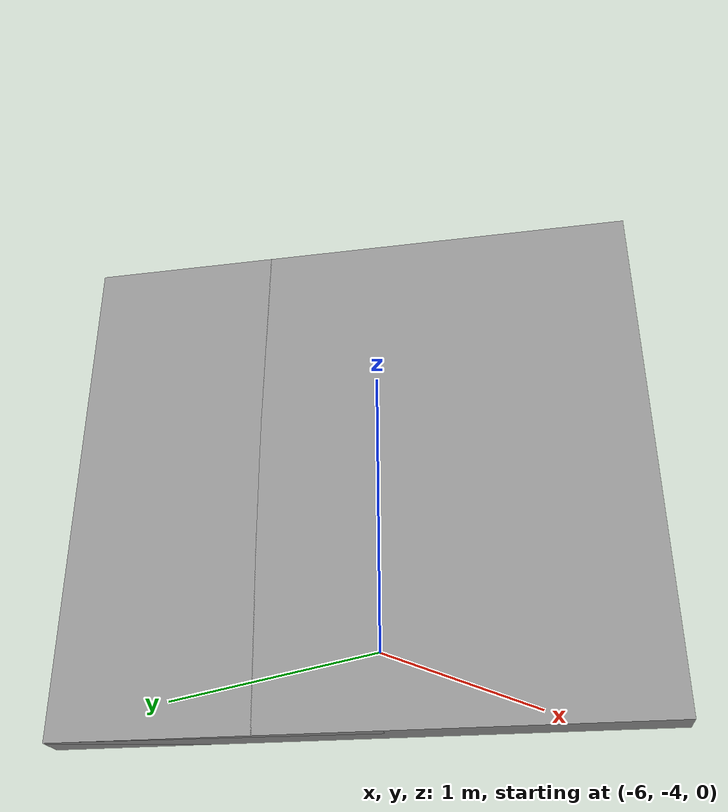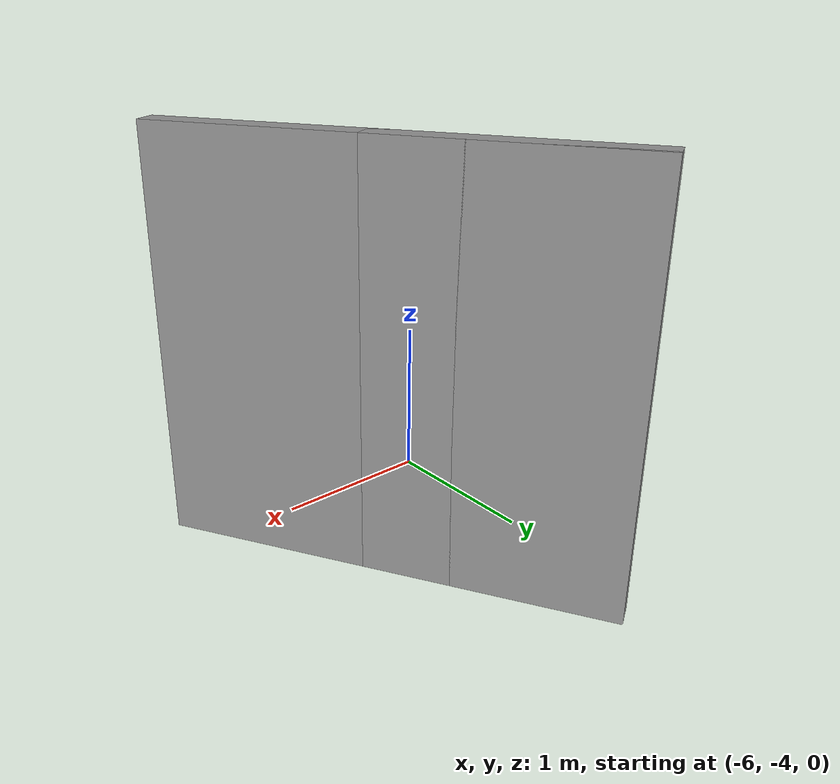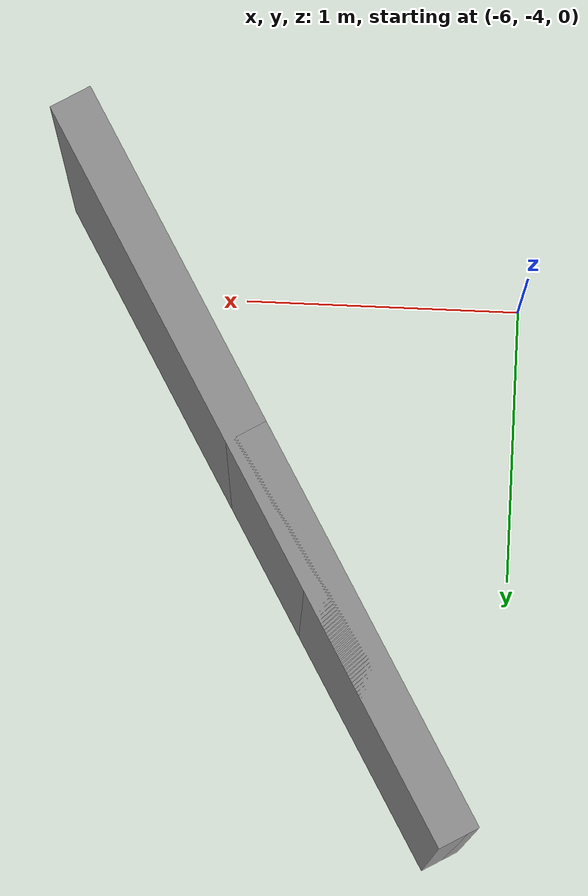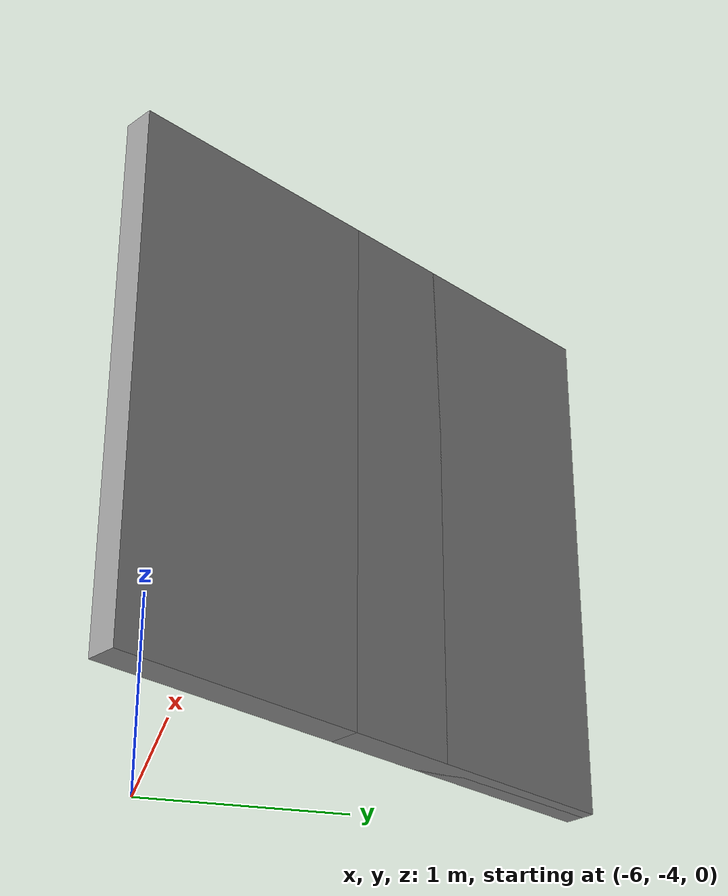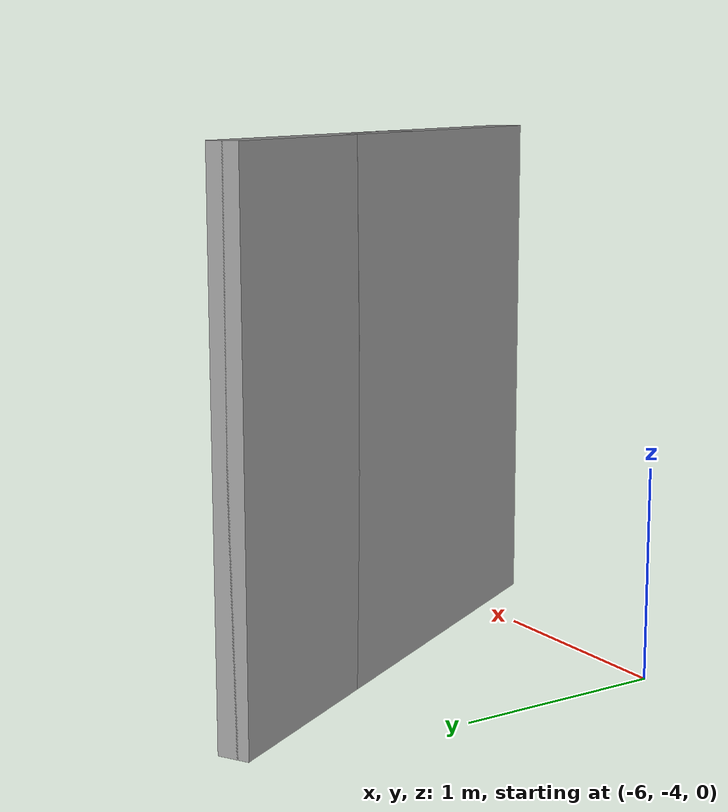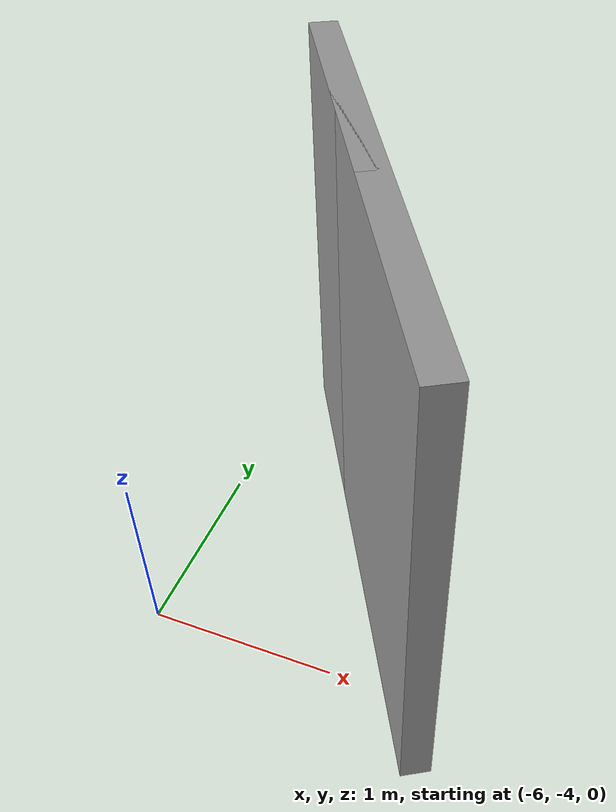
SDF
<?xml version='1.0'?>
<sdf version='1.7'>
  <model name='draft'>
    <pose>-2.92873 -2.19249 0 0 -0 0</pose>
    <link name='Wall_1'>
      <collision name='Wall_1_Collision'>
        <geometry>
          <box>
            <size>1.5 0.15 2.5</size>
          </box>
        </geometry>
        <pose>0 0 1.25 0 -0 0</pose>
      </collision>
      <visual name='Wall_1_Visual'>
        <pose>0 0 1.25 0 -0 0</pose>
        <geometry>
          <box>
            <size>1.5 0.15 2.5</size>
          </box>
        </geometry>
        <material>
          <script>
            <uri>file://media/materials/scripts/gazebo.material</uri>
            <name>Gazebo/Grey</name>
          </script>
          <ambient>1 1 1 1</ambient>
        </material>
        <meta>
          <layer>0</layer>
        </meta>
      </visual>
      <pose>-2.48877 -0.422941 0 0 -0 2.0944</pose>
    </link>
    <link name='Wall_2'>
      <collision name='Wall_2_Collision'>
        <geometry>
          <box>
            <size>2.75 0.15 2.5</size>
          </box>
        </geometry>
        <pose>0 0 1.25 0 -0 0</pose>
      </collision>
      <visual name='Wall_2_Visual'>
        <pose>0 0 1.25 0 -0 0</pose>
        <geometry>
          <box>
            <size>2.75 0.15 2.5</size>
          </box>
        </geometry>
        <material>
          <script>
            <uri>file://media/materials/scripts/gazebo.material</uri>
            <name>Gazebo/Grey</name>
          </script>
          <ambient>1 1 1 1</ambient>
        </material>
        <meta>
          <layer>0</layer>
        </meta>
      </visual>
      <pose>-2.17627 -0.964207 0 0 -0 -1.0472</pose>
    </link>
    <static>1</static>
  </model>
</sdf>
